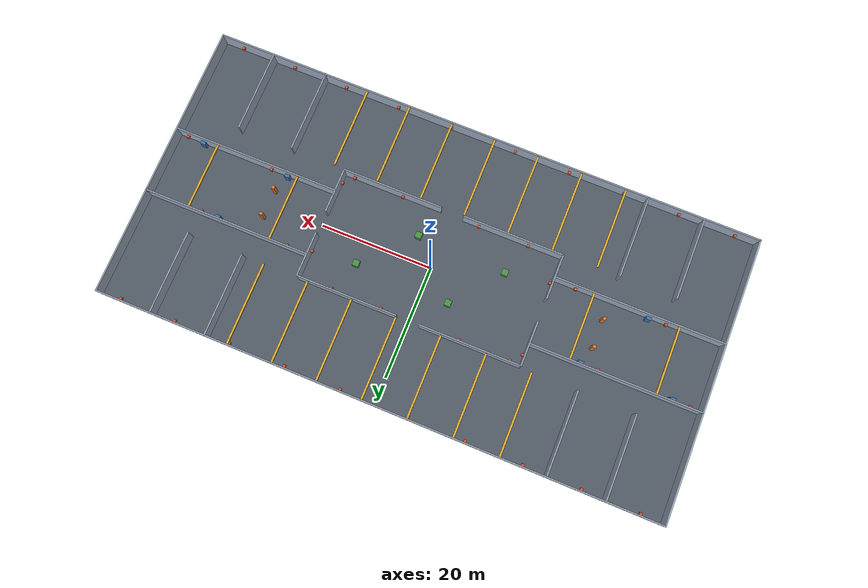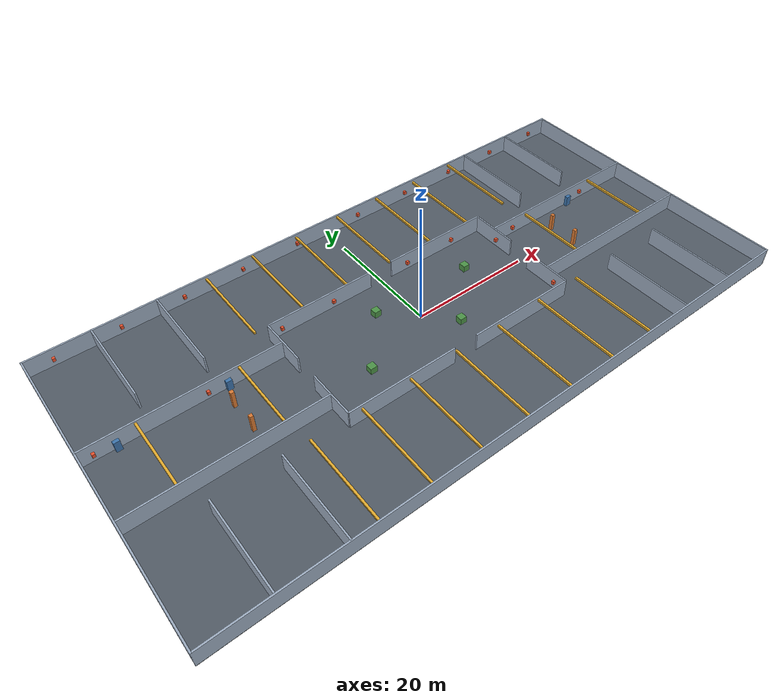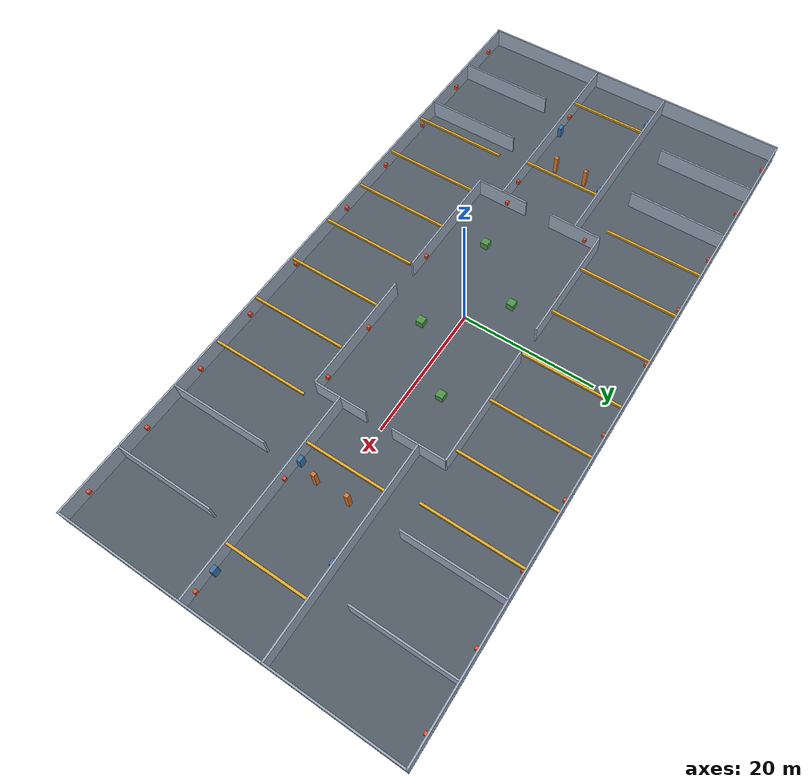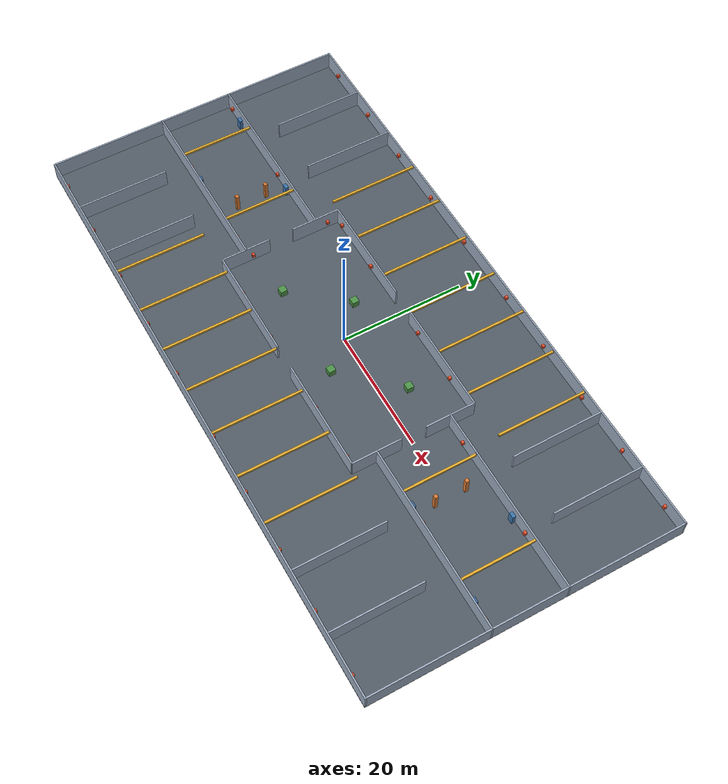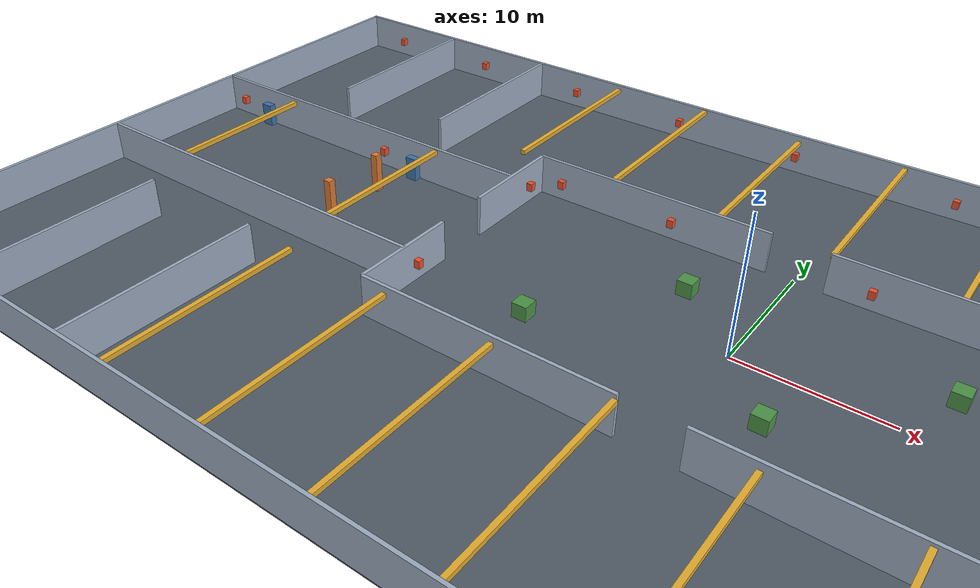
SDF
<sdf version='1.7'>
  <world name='default'>
    <light name='sun' type='directional'>
      <pose>0 0 60 0 0 0</pose>
      <diffuse>0.9 0.9 0.9 1</diffuse>
      <specular>0.2 0.2 0.2 1</specular>
      <direction>-0.3 0.2 -0.9</direction>
    </light>
    <gravity>0 0 -9.8</gravity>
    <physics type='ode'>
      <max_step_size>0.001</max_step_size>
      <real_time_factor>1</real_time_factor>
      <real_time_update_rate>1000</real_time_update_rate>
    </physics>
    <plugin filename='ignition-gazebo-physics-system' name='gz::sim::systems::Physics'/>
    <plugin filename='ignition-gazebo-sensors-system' name='gz::sim::systems::Sensors'>
      <render_engine>ogre2</render_engine>
    </plugin>
    <plugin filename='ignition-gazebo-imu-system' name='gz::sim::systems::Imu'/>
    <plugin filename='ignition-gazebo-forcetorque-system' name='gz::sim::systems::ForceTorque'/>
    <plugin filename='ignition-gazebo-user-commands-system' name='gz::sim::systems::UserCommands'/>
    <plugin filename='ignition-gazebo-scene-broadcaster-system' name='gz::sim::systems::SceneBroadcaster'/>
    <scene>
      <ambient>0.55 0.55 0.55 1</ambient>
      <background>0.78 0.82 0.88 1</background>
      <shadows>true</shadows>
    </scene>
    <model name='teaching_building_atrium'>
      <static>true</static>
      <link name='floor'>
        <pose>0.000 0.000 -0.050 0 0 0</pose>
        <collision name='collision'>
          <geometry><box><size>100.000 50.000 0.100</size></box></geometry>
        </collision>
        <visual name='visual'>
          <geometry><box><size>100.000 50.000 0.100</size></box></geometry>
          <material>
            <ambient>0.320 0.360 0.400 1.000</ambient>
            <diffuse>0.320 0.360 0.400 1.000</diffuse>
          </material>
        </visual>
      </link>
      <link name='outer_north'>
        <pose>0.000 24.875 1.500 0 0 0</pose>
        <collision name='collision'>
          <geometry><box><size>100.000 0.250 3.000</size></box></geometry>
        </collision>
        <visual name='visual'>
          <geometry><box><size>100.000 0.250 3.000</size></box></geometry>
          <material>
            <ambient>0.620 0.680 0.760 1.000</ambient>
            <diffuse>0.620 0.680 0.760 1.000</diffuse>
          </material>
        </visual>
      </link>
      <link name='outer_south'>
        <pose>0.000 -24.875 1.500 0 0 0</pose>
        <collision name='collision'>
          <geometry><box><size>100.000 0.250 3.000</size></box></geometry>
        </collision>
        <visual name='visual'>
          <geometry><box><size>100.000 0.250 3.000</size></box></geometry>
          <material>
            <ambient>0.620 0.680 0.760 1.000</ambient>
            <diffuse>0.620 0.680 0.760 1.000</diffuse>
          </material>
        </visual>
      </link>
      <link name='outer_east'>
        <pose>49.875 0.000 1.500 0 0 0</pose>
        <collision name='collision'>
          <geometry><box><size>0.250 50.000 3.000</size></box></geometry>
        </collision>
        <visual name='visual'>
          <geometry><box><size>0.250 50.000 3.000</size></box></geometry>
          <material>
            <ambient>0.620 0.680 0.760 1.000</ambient>
            <diffuse>0.620 0.680 0.760 1.000</diffuse>
          </material>
        </visual>
      </link>
      <link name='outer_west'>
        <pose>-49.875 0.000 1.500 0 0 0</pose>
        <collision name='collision'>
          <geometry><box><size>0.250 50.000 3.000</size></box></geometry>
        </collision>
        <visual name='visual'>
          <geometry><box><size>0.250 50.000 3.000</size></box></geometry>
          <material>
            <ambient>0.620 0.680 0.760 1.000</ambient>
            <diffuse>0.620 0.680 0.760 1.000</diffuse>
          </material>
        </visual>
      </link>
      <link name='atrium_north_left'>
        <pose>-11.000 10.000 1.500 0 0 0</pose>
        <collision name='collision'>
          <geometry><box><size>18.000 0.250 3.000</size></box></geometry>
        </collision>
        <visual name='visual'>
          <geometry><box><size>18.000 0.250 3.000</size></box></geometry>
          <material>
            <ambient>0.620 0.680 0.760 1.000</ambient>
            <diffuse>0.620 0.680 0.760 1.000</diffuse>
          </material>
        </visual>
      </link>
      <link name='atrium_north_right'>
        <pose>11.000 10.000 1.500 0 0 0</pose>
        <collision name='collision'>
          <geometry><box><size>18.000 0.250 3.000</size></box></geometry>
        </collision>
        <visual name='visual'>
          <geometry><box><size>18.000 0.250 3.000</size></box></geometry>
          <material>
            <ambient>0.620 0.680 0.760 1.000</ambient>
            <diffuse>0.620 0.680 0.760 1.000</diffuse>
          </material>
        </visual>
      </link>
      <link name='atrium_south_left'>
        <pose>-11.000 -10.000 1.500 0 0 0</pose>
        <collision name='collision'>
          <geometry><box><size>18.000 0.250 3.000</size></box></geometry>
        </collision>
        <visual name='visual'>
          <geometry><box><size>18.000 0.250 3.000</size></box></geometry>
          <material>
            <ambient>0.620 0.680 0.760 1.000</ambient>
            <diffuse>0.620 0.680 0.760 1.000</diffuse>
          </material>
        </visual>
      </link>
      <link name='atrium_south_right'>
        <pose>11.000 -10.000 1.500 0 0 0</pose>
        <collision name='collision'>
          <geometry><box><size>18.000 0.250 3.000</size></box></geometry>
        </collision>
        <visual name='visual'>
          <geometry><box><size>18.000 0.250 3.000</size></box></geometry>
          <material>
            <ambient>0.620 0.680 0.760 1.000</ambient>
            <diffuse>0.620 0.680 0.760 1.000</diffuse>
          </material>
        </visual>
      </link>
      <link name='atrium_west_lower'>
        <pose>-20.000 -6.000 1.500 0 0 0</pose>
        <collision name='collision'>
          <geometry><box><size>0.250 8.000 3.000</size></box></geometry>
        </collision>
        <visual name='visual'>
          <geometry><box><size>0.250 8.000 3.000</size></box></geometry>
          <material>
            <ambient>0.620 0.680 0.760 1.000</ambient>
            <diffuse>0.620 0.680 0.760 1.000</diffuse>
          </material>
        </visual>
      </link>
      <link name='atrium_west_upper'>
        <pose>-20.000 6.000 1.500 0 0 0</pose>
        <collision name='collision'>
          <geometry><box><size>0.250 8.000 3.000</size></box></geometry>
        </collision>
        <visual name='visual'>
          <geometry><box><size>0.250 8.000 3.000</size></box></geometry>
          <material>
            <ambient>0.620 0.680 0.760 1.000</ambient>
            <diffuse>0.620 0.680 0.760 1.000</diffuse>
          </material>
        </visual>
      </link>
      <link name='atrium_east_lower'>
        <pose>20.000 -6.000 1.500 0 0 0</pose>
        <collision name='collision'>
          <geometry><box><size>0.250 8.000 3.000</size></box></geometry>
        </collision>
        <visual name='visual'>
          <geometry><box><size>0.250 8.000 3.000</size></box></geometry>
          <material>
            <ambient>0.620 0.680 0.760 1.000</ambient>
            <diffuse>0.620 0.680 0.760 1.000</diffuse>
          </material>
        </visual>
      </link>
      <link name='atrium_east_upper'>
        <pose>20.000 6.000 1.500 0 0 0</pose>
        <collision name='collision'>
          <geometry><box><size>0.250 8.000 3.000</size></box></geometry>
        </collision>
        <visual name='visual'>
          <geometry><box><size>0.250 8.000 3.000</size></box></geometry>
          <material>
            <ambient>0.620 0.680 0.760 1.000</ambient>
            <diffuse>0.620 0.680 0.760 1.000</diffuse>
          </material>
        </visual>
      </link>
      <link name='north_wing_0'>
        <pose>-40.000 17.500 1.500 0 0 0</pose>
        <collision name='collision'>
          <geometry><box><size>0.250 14.750 3.000</size></box></geometry>
        </collision>
        <visual name='visual'>
          <geometry><box><size>0.250 14.750 3.000</size></box></geometry>
          <material>
            <ambient>0.620 0.680 0.760 1.000</ambient>
            <diffuse>0.620 0.680 0.760 1.000</diffuse>
          </material>
        </visual>
      </link>
      <link name='south_wing_0'>
        <pose>-40.000 -17.500 1.500 0 0 0</pose>
        <collision name='collision'>
          <geometry><box><size>0.250 14.750 3.000</size></box></geometry>
        </collision>
        <visual name='visual'>
          <geometry><box><size>0.250 14.750 3.000</size></box></geometry>
          <material>
            <ambient>0.620 0.680 0.760 1.000</ambient>
            <diffuse>0.620 0.680 0.760 1.000</diffuse>
          </material>
        </visual>
      </link>
      <link name='north_wing_1'>
        <pose>-30.000 17.500 1.500 0 0 0</pose>
        <collision name='collision'>
          <geometry><box><size>0.250 14.750 3.000</size></box></geometry>
        </collision>
        <visual name='visual'>
          <geometry><box><size>0.250 14.750 3.000</size></box></geometry>
          <material>
            <ambient>0.620 0.680 0.760 1.000</ambient>
            <diffuse>0.620 0.680 0.760 1.000</diffuse>
          </material>
        </visual>
      </link>
      <link name='south_wing_1'>
        <pose>-30.000 -17.500 1.500 0 0 0</pose>
        <collision name='collision'>
          <geometry><box><size>0.250 14.750 3.000</size></box></geometry>
        </collision>
        <visual name='visual'>
          <geometry><box><size>0.250 14.750 3.000</size></box></geometry>
          <material>
            <ambient>0.620 0.680 0.760 1.000</ambient>
            <diffuse>0.620 0.680 0.760 1.000</diffuse>
          </material>
        </visual>
      </link>
      <link name='north_wing_2'>
        <pose>30.000 17.500 1.500 0 0 0</pose>
        <collision name='collision'>
          <geometry><box><size>0.250 14.750 3.000</size></box></geometry>
        </collision>
        <visual name='visual'>
          <geometry><box><size>0.250 14.750 3.000</size></box></geometry>
          <material>
            <ambient>0.620 0.680 0.760 1.000</ambient>
            <diffuse>0.620 0.680 0.760 1.000</diffuse>
          </material>
        </visual>
      </link>
      <link name='south_wing_2'>
        <pose>30.000 -17.500 1.500 0 0 0</pose>
        <collision name='collision'>
          <geometry><box><size>0.250 14.750 3.000</size></box></geometry>
        </collision>
        <visual name='visual'>
          <geometry><box><size>0.250 14.750 3.000</size></box></geometry>
          <material>
            <ambient>0.620 0.680 0.760 1.000</ambient>
            <diffuse>0.620 0.680 0.760 1.000</diffuse>
          </material>
        </visual>
      </link>
      <link name='north_wing_3'>
        <pose>40.000 17.500 1.500 0 0 0</pose>
        <collision name='collision'>
          <geometry><box><size>0.250 14.750 3.000</size></box></geometry>
        </collision>
        <visual name='visual'>
          <geometry><box><size>0.250 14.750 3.000</size></box></geometry>
          <material>
            <ambient>0.620 0.680 0.760 1.000</ambient>
            <diffuse>0.620 0.680 0.760 1.000</diffuse>
          </material>
        </visual>
      </link>
      <link name='south_wing_3'>
        <pose>40.000 -17.500 1.500 0 0 0</pose>
        <collision name='collision'>
          <geometry><box><size>0.250 14.750 3.000</size></box></geometry>
        </collision>
        <visual name='visual'>
          <geometry><box><size>0.250 14.750 3.000</size></box></geometry>
          <material>
            <ambient>0.620 0.680 0.760 1.000</ambient>
            <diffuse>0.620 0.680 0.760 1.000</diffuse>
          </material>
        </visual>
      </link>
      <link name='west_mid_lower'>
        <pose>-35.000 -6.000 1.500 0 0 0</pose>
        <collision name='collision'>
          <geometry><box><size>30.000 0.250 3.000</size></box></geometry>
        </collision>
        <visual name='visual'>
          <geometry><box><size>30.000 0.250 3.000</size></box></geometry>
          <material>
            <ambient>0.620 0.680 0.760 1.000</ambient>
            <diffuse>0.620 0.680 0.760 1.000</diffuse>
          </material>
        </visual>
      </link>
      <link name='west_mid_upper'>
        <pose>-35.000 6.000 1.500 0 0 0</pose>
        <collision name='collision'>
          <geometry><box><size>30.000 0.250 3.000</size></box></geometry>
        </collision>
        <visual name='visual'>
          <geometry><box><size>30.000 0.250 3.000</size></box></geometry>
          <material>
            <ambient>0.620 0.680 0.760 1.000</ambient>
            <diffuse>0.620 0.680 0.760 1.000</diffuse>
          </material>
        </visual>
      </link>
      <link name='east_mid_lower'>
        <pose>35.000 -6.000 1.500 0 0 0</pose>
        <collision name='collision'>
          <geometry><box><size>30.000 0.250 3.000</size></box></geometry>
        </collision>
        <visual name='visual'>
          <geometry><box><size>30.000 0.250 3.000</size></box></geometry>
          <material>
            <ambient>0.620 0.680 0.760 1.000</ambient>
            <diffuse>0.620 0.680 0.760 1.000</diffuse>
          </material>
        </visual>
      </link>
      <link name='east_mid_upper'>
        <pose>35.000 6.000 1.500 0 0 0</pose>
        <collision name='collision'>
          <geometry><box><size>30.000 0.250 3.000</size></box></geometry>
        </collision>
        <visual name='visual'>
          <geometry><box><size>30.000 0.250 3.000</size></box></geometry>
          <material>
            <ambient>0.620 0.680 0.760 1.000</ambient>
            <diffuse>0.620 0.680 0.760 1.000</diffuse>
          </material>
        </visual>
      </link>
      <link name='loop_pillar_0'>
        <pose>-30.000 -2.500 1.500 0 0 0</pose>
        <collision name='collision'>
          <geometry><box><size>0.550 0.550 3.000</size></box></geometry>
        </collision>
        <visual name='visual'>
          <geometry><box><size>0.550 0.550 3.000</size></box></geometry>
          <material>
            <ambient>0.860 0.480 0.200 1.000</ambient>
            <diffuse>0.860 0.480 0.200 1.000</diffuse>
          </material>
        </visual>
      </link>
      <link name='loop_pillar_1'>
        <pose>-30.000 2.500 1.500 0 0 0</pose>
        <collision name='collision'>
          <geometry><box><size>0.550 0.550 3.000</size></box></geometry>
        </collision>
        <visual name='visual'>
          <geometry><box><size>0.550 0.550 3.000</size></box></geometry>
          <material>
            <ambient>0.860 0.480 0.200 1.000</ambient>
            <diffuse>0.860 0.480 0.200 1.000</diffuse>
          </material>
        </visual>
      </link>
      <link name='loop_pillar_2'>
        <pose>30.000 -2.500 1.500 0 0 0</pose>
        <collision name='collision'>
          <geometry><box><size>0.550 0.550 3.000</size></box></geometry>
        </collision>
        <visual name='visual'>
          <geometry><box><size>0.550 0.550 3.000</size></box></geometry>
          <material>
            <ambient>0.860 0.480 0.200 1.000</ambient>
            <diffuse>0.860 0.480 0.200 1.000</diffuse>
          </material>
        </visual>
      </link>
      <link name='loop_pillar_3'>
        <pose>30.000 2.500 1.500 0 0 0</pose>
        <collision name='collision'>
          <geometry><box><size>0.550 0.550 3.000</size></box></geometry>
        </collision>
        <visual name='visual'>
          <geometry><box><size>0.550 0.550 3.000</size></box></geometry>
          <material>
            <ambient>0.860 0.480 0.200 1.000</ambient>
            <diffuse>0.860 0.480 0.200 1.000</diffuse>
          </material>
        </visual>
      </link>
      <link name='atrium_link_cabinet_0'>
        <pose>-45.000 5.550 0.900 0 0 0</pose>
        <collision name='collision'>
          <geometry><box><size>0.900 0.550 1.800</size></box></geometry>
        </collision>
        <visual name='visual'>
          <geometry><box><size>0.900 0.550 1.800</size></box></geometry>
          <material>
            <ambient>0.240 0.460 0.680 1.000</ambient>
            <diffuse>0.240 0.460 0.680 1.000</diffuse>
          </material>
        </visual>
      </link>
      <link name='atrium_link_cabinet_1'>
        <pose>-37.000 -5.550 0.900 0 0 0</pose>
        <collision name='collision'>
          <geometry><box><size>0.900 0.550 1.800</size></box></geometry>
        </collision>
        <visual name='visual'>
          <geometry><box><size>0.900 0.550 1.800</size></box></geometry>
          <material>
            <ambient>0.240 0.460 0.680 1.000</ambient>
            <diffuse>0.240 0.460 0.680 1.000</diffuse>
          </material>
        </visual>
      </link>
      <link name='atrium_link_cabinet_2'>
        <pose>-29.000 5.550 0.900 0 0 0</pose>
        <collision name='collision'>
          <geometry><box><size>0.900 0.550 1.800</size></box></geometry>
        </collision>
        <visual name='visual'>
          <geometry><box><size>0.900 0.550 1.800</size></box></geometry>
          <material>
            <ambient>0.240 0.460 0.680 1.000</ambient>
            <diffuse>0.240 0.460 0.680 1.000</diffuse>
          </material>
        </visual>
      </link>
      <link name='atrium_link_cabinet_3'>
        <pose>29.000 -5.550 0.900 0 0 0</pose>
        <collision name='collision'>
          <geometry><box><size>0.900 0.550 1.800</size></box></geometry>
        </collision>
        <visual name='visual'>
          <geometry><box><size>0.900 0.550 1.800</size></box></geometry>
          <material>
            <ambient>0.240 0.460 0.680 1.000</ambient>
            <diffuse>0.240 0.460 0.680 1.000</diffuse>
          </material>
        </visual>
      </link>
      <link name='atrium_link_cabinet_4'>
        <pose>37.000 5.550 0.900 0 0 0</pose>
        <collision name='collision'>
          <geometry><box><size>0.900 0.550 1.800</size></box></geometry>
        </collision>
        <visual name='visual'>
          <geometry><box><size>0.900 0.550 1.800</size></box></geometry>
          <material>
            <ambient>0.240 0.460 0.680 1.000</ambient>
            <diffuse>0.240 0.460 0.680 1.000</diffuse>
          </material>
        </visual>
      </link>
      <link name='atrium_link_cabinet_5'>
        <pose>45.000 -5.550 0.900 0 0 0</pose>
        <collision name='collision'>
          <geometry><box><size>0.900 0.550 1.800</size></box></geometry>
        </collision>
        <visual name='visual'>
          <geometry><box><size>0.900 0.550 1.800</size></box></geometry>
          <material>
            <ambient>0.240 0.460 0.680 1.000</ambient>
            <diffuse>0.240 0.460 0.680 1.000</diffuse>
          </material>
        </visual>
      </link>
      <link name='atrium_planter_0'>
        <pose>-12.000 -4.000 0.550 0 0 0</pose>
        <collision name='collision'>
          <geometry><box><size>1.100 1.100 1.100</size></box></geometry>
        </collision>
        <visual name='visual'>
          <geometry><box><size>1.100 1.100 1.100</size></box></geometry>
          <material>
            <ambient>0.300 0.580 0.280 1.000</ambient>
            <diffuse>0.300 0.580 0.280 1.000</diffuse>
          </material>
        </visual>
      </link>
      <link name='atrium_planter_1'>
        <pose>-5.000 4.500 0.550 0 0 0</pose>
        <collision name='collision'>
          <geometry><box><size>1.100 1.100 1.100</size></box></geometry>
        </collision>
        <visual name='visual'>
          <geometry><box><size>1.100 1.100 1.100</size></box></geometry>
          <material>
            <ambient>0.300 0.580 0.280 1.000</ambient>
            <diffuse>0.300 0.580 0.280 1.000</diffuse>
          </material>
        </visual>
      </link>
      <link name='atrium_planter_2'>
        <pose>4.000 -4.500 0.550 0 0 0</pose>
        <collision name='collision'>
          <geometry><box><size>1.100 1.100 1.100</size></box></geometry>
        </collision>
        <visual name='visual'>
          <geometry><box><size>1.100 1.100 1.100</size></box></geometry>
          <material>
            <ambient>0.300 0.580 0.280 1.000</ambient>
            <diffuse>0.300 0.580 0.280 1.000</diffuse>
          </material>
        </visual>
      </link>
      <link name='atrium_planter_3'>
        <pose>12.000 4.000 0.550 0 0 0</pose>
        <collision name='collision'>
          <geometry><box><size>1.100 1.100 1.100</size></box></geometry>
        </collision>
        <visual name='visual'>
          <geometry><box><size>1.100 1.100 1.100</size></box></geometry>
          <material>
            <ambient>0.300 0.580 0.280 1.000</ambient>
            <diffuse>0.300 0.580 0.280 1.000</diffuse>
          </material>
        </visual>
      </link>
      <link name='atrium_lidar_feature_0'>
        <pose>-46.000 24.525 1.350 0 0 0</pose>
        <collision name='collision'>
          <geometry><box><size>0.450 0.450 0.600</size></box></geometry>
        </collision>
        <visual name='visual'>
          <geometry><box><size>0.450 0.450 0.600</size></box></geometry>
          <material>
            <ambient>0.920 0.320 0.180 1.000</ambient>
            <diffuse>0.920 0.320 0.180 1.000</diffuse>
          </material>
        </visual>
      </link>
      <link name='atrium_lidar_feature_1'>
        <pose>-46.000 -24.525 1.350 0 0 0</pose>
        <collision name='collision'>
          <geometry><box><size>0.450 0.450 0.600</size></box></geometry>
        </collision>
        <visual name='visual'>
          <geometry><box><size>0.450 0.450 0.600</size></box></geometry>
          <material>
            <ambient>0.920 0.320 0.180 1.000</ambient>
            <diffuse>0.920 0.320 0.180 1.000</diffuse>
          </material>
        </visual>
      </link>
      <link name='atrium_lidar_feature_2'>
        <pose>-36.000 24.525 1.350 0 0 0</pose>
        <collision name='collision'>
          <geometry><box><size>0.450 0.450 0.600</size></box></geometry>
        </collision>
        <visual name='visual'>
          <geometry><box><size>0.450 0.450 0.600</size></box></geometry>
          <material>
            <ambient>0.920 0.320 0.180 1.000</ambient>
            <diffuse>0.920 0.320 0.180 1.000</diffuse>
          </material>
        </visual>
      </link>
      <link name='atrium_lidar_feature_3'>
        <pose>-36.000 -24.525 1.350 0 0 0</pose>
        <collision name='collision'>
          <geometry><box><size>0.450 0.450 0.600</size></box></geometry>
        </collision>
        <visual name='visual'>
          <geometry><box><size>0.450 0.450 0.600</size></box></geometry>
          <material>
            <ambient>0.920 0.320 0.180 1.000</ambient>
            <diffuse>0.920 0.320 0.180 1.000</diffuse>
          </material>
        </visual>
      </link>
      <link name='atrium_lidar_feature_4'>
        <pose>-26.000 24.525 1.350 0 0 0</pose>
        <collision name='collision'>
          <geometry><box><size>0.450 0.450 0.600</size></box></geometry>
        </collision>
        <visual name='visual'>
          <geometry><box><size>0.450 0.450 0.600</size></box></geometry>
          <material>
            <ambient>0.920 0.320 0.180 1.000</ambient>
            <diffuse>0.920 0.320 0.180 1.000</diffuse>
          </material>
        </visual>
      </link>
      <link name='atrium_lidar_feature_5'>
        <pose>-26.000 -24.525 1.350 0 0 0</pose>
        <collision name='collision'>
          <geometry><box><size>0.450 0.450 0.600</size></box></geometry>
        </collision>
        <visual name='visual'>
          <geometry><box><size>0.450 0.450 0.600</size></box></geometry>
          <material>
            <ambient>0.920 0.320 0.180 1.000</ambient>
            <diffuse>0.920 0.320 0.180 1.000</diffuse>
          </material>
        </visual>
      </link>
      <link name='atrium_lidar_feature_6'>
        <pose>-16.000 24.525 1.350 0 0 0</pose>
        <collision name='collision'>
          <geometry><box><size>0.450 0.450 0.600</size></box></geometry>
        </collision>
        <visual name='visual'>
          <geometry><box><size>0.450 0.450 0.600</size></box></geometry>
          <material>
            <ambient>0.920 0.320 0.180 1.000</ambient>
            <diffuse>0.920 0.320 0.180 1.000</diffuse>
          </material>
        </visual>
      </link>
      <link name='atrium_lidar_feature_7'>
        <pose>-16.000 -24.525 1.350 0 0 0</pose>
        <collision name='collision'>
          <geometry><box><size>0.450 0.450 0.600</size></box></geometry>
        </collision>
        <visual name='visual'>
          <geometry><box><size>0.450 0.450 0.600</size></box></geometry>
          <material>
            <ambient>0.920 0.320 0.180 1.000</ambient>
            <diffuse>0.920 0.320 0.180 1.000</diffuse>
          </material>
        </visual>
      </link>
      <link name='atrium_lidar_feature_8'>
        <pose>-6.000 24.525 1.350 0 0 0</pose>
        <collision name='collision'>
          <geometry><box><size>0.450 0.450 0.600</size></box></geometry>
        </collision>
        <visual name='visual'>
          <geometry><box><size>0.450 0.450 0.600</size></box></geometry>
          <material>
            <ambient>0.920 0.320 0.180 1.000</ambient>
            <diffuse>0.920 0.320 0.180 1.000</diffuse>
          </material>
        </visual>
      </link>
      <link name='atrium_lidar_feature_9'>
        <pose>-6.000 -24.525 1.350 0 0 0</pose>
        <collision name='collision'>
          <geometry><box><size>0.450 0.450 0.600</size></box></geometry>
        </collision>
        <visual name='visual'>
          <geometry><box><size>0.450 0.450 0.600</size></box></geometry>
          <material>
            <ambient>0.920 0.320 0.180 1.000</ambient>
            <diffuse>0.920 0.320 0.180 1.000</diffuse>
          </material>
        </visual>
      </link>
      <link name='atrium_lidar_feature_10'>
        <pose>6.000 24.525 1.350 0 0 0</pose>
        <collision name='collision'>
          <geometry><box><size>0.450 0.450 0.600</size></box></geometry>
        </collision>
        <visual name='visual'>
          <geometry><box><size>0.450 0.450 0.600</size></box></geometry>
          <material>
            <ambient>0.920 0.320 0.180 1.000</ambient>
            <diffuse>0.920 0.320 0.180 1.000</diffuse>
          </material>
        </visual>
      </link>
      <link name='atrium_lidar_feature_11'>
        <pose>6.000 -24.525 1.350 0 0 0</pose>
        <collision name='collision'>
          <geometry><box><size>0.450 0.450 0.600</size></box></geometry>
        </collision>
        <visual name='visual'>
          <geometry><box><size>0.450 0.450 0.600</size></box></geometry>
          <material>
            <ambient>0.920 0.320 0.180 1.000</ambient>
            <diffuse>0.920 0.320 0.180 1.000</diffuse>
          </material>
        </visual>
      </link>
      <link name='atrium_lidar_feature_12'>
        <pose>16.000 24.525 1.350 0 0 0</pose>
        <collision name='collision'>
          <geometry><box><size>0.450 0.450 0.600</size></box></geometry>
        </collision>
        <visual name='visual'>
          <geometry><box><size>0.450 0.450 0.600</size></box></geometry>
          <material>
            <ambient>0.920 0.320 0.180 1.000</ambient>
            <diffuse>0.920 0.320 0.180 1.000</diffuse>
          </material>
        </visual>
      </link>
      <link name='atrium_lidar_feature_13'>
        <pose>16.000 -24.525 1.350 0 0 0</pose>
        <collision name='collision'>
          <geometry><box><size>0.450 0.450 0.600</size></box></geometry>
        </collision>
        <visual name='visual'>
          <geometry><box><size>0.450 0.450 0.600</size></box></geometry>
          <material>
            <ambient>0.920 0.320 0.180 1.000</ambient>
            <diffuse>0.920 0.320 0.180 1.000</diffuse>
          </material>
        </visual>
      </link>
      <link name='atrium_lidar_feature_14'>
        <pose>26.000 24.525 1.350 0 0 0</pose>
        <collision name='collision'>
          <geometry><box><size>0.450 0.450 0.600</size></box></geometry>
        </collision>
        <visual name='visual'>
          <geometry><box><size>0.450 0.450 0.600</size></box></geometry>
          <material>
            <ambient>0.920 0.320 0.180 1.000</ambient>
            <diffuse>0.920 0.320 0.180 1.000</diffuse>
          </material>
        </visual>
      </link>
      <link name='atrium_lidar_feature_15'>
        <pose>26.000 -24.525 1.350 0 0 0</pose>
        <collision name='collision'>
          <geometry><box><size>0.450 0.450 0.600</size></box></geometry>
        </collision>
        <visual name='visual'>
          <geometry><box><size>0.450 0.450 0.600</size></box></geometry>
          <material>
            <ambient>0.920 0.320 0.180 1.000</ambient>
            <diffuse>0.920 0.320 0.180 1.000</diffuse>
          </material>
        </visual>
      </link>
      <link name='atrium_lidar_feature_16'>
        <pose>36.000 24.525 1.350 0 0 0</pose>
        <collision name='collision'>
          <geometry><box><size>0.450 0.450 0.600</size></box></geometry>
        </collision>
        <visual name='visual'>
          <geometry><box><size>0.450 0.450 0.600</size></box></geometry>
          <material>
            <ambient>0.920 0.320 0.180 1.000</ambient>
            <diffuse>0.920 0.320 0.180 1.000</diffuse>
          </material>
        </visual>
      </link>
      <link name='atrium_lidar_feature_17'>
        <pose>36.000 -24.525 1.350 0 0 0</pose>
        <collision name='collision'>
          <geometry><box><size>0.450 0.450 0.600</size></box></geometry>
        </collision>
        <visual name='visual'>
          <geometry><box><size>0.450 0.450 0.600</size></box></geometry>
          <material>
            <ambient>0.920 0.320 0.180 1.000</ambient>
            <diffuse>0.920 0.320 0.180 1.000</diffuse>
          </material>
        </visual>
      </link>
      <link name='atrium_lidar_feature_18'>
        <pose>46.000 24.525 1.350 0 0 0</pose>
        <collision name='collision'>
          <geometry><box><size>0.450 0.450 0.600</size></box></geometry>
        </collision>
        <visual name='visual'>
          <geometry><box><size>0.450 0.450 0.600</size></box></geometry>
          <material>
            <ambient>0.920 0.320 0.180 1.000</ambient>
            <diffuse>0.920 0.320 0.180 1.000</diffuse>
          </material>
        </visual>
      </link>
      <link name='atrium_lidar_feature_19'>
        <pose>46.000 -24.525 1.350 0 0 0</pose>
        <collision name='collision'>
          <geometry><box><size>0.450 0.450 0.600</size></box></geometry>
        </collision>
        <visual name='visual'>
          <geometry><box><size>0.450 0.450 0.600</size></box></geometry>
          <material>
            <ambient>0.920 0.320 0.180 1.000</ambient>
            <diffuse>0.920 0.320 0.180 1.000</diffuse>
          </material>
        </visual>
      </link>
      <link name='atrium_lidar_feature_20'>
        <pose>-48.000 5.650 1.350 0 0 0</pose>
        <collision name='collision'>
          <geometry><box><size>0.450 0.450 0.600</size></box></geometry>
        </collision>
        <visual name='visual'>
          <geometry><box><size>0.450 0.450 0.600</size></box></geometry>
          <material>
            <ambient>0.920 0.320 0.180 1.000</ambient>
            <diffuse>0.920 0.320 0.180 1.000</diffuse>
          </material>
        </visual>
      </link>
      <link name='atrium_lidar_feature_21'>
        <pose>-40.000 -5.650 1.350 0 0 0</pose>
        <collision name='collision'>
          <geometry><box><size>0.450 0.450 0.600</size></box></geometry>
        </collision>
        <visual name='visual'>
          <geometry><box><size>0.450 0.450 0.600</size></box></geometry>
          <material>
            <ambient>0.920 0.320 0.180 1.000</ambient>
            <diffuse>0.920 0.320 0.180 1.000</diffuse>
          </material>
        </visual>
      </link>
      <link name='atrium_lidar_feature_22'>
        <pose>-32.000 5.650 1.350 0 0 0</pose>
        <collision name='collision'>
          <geometry><box><size>0.450 0.450 0.600</size></box></geometry>
        </collision>
        <visual name='visual'>
          <geometry><box><size>0.450 0.450 0.600</size></box></geometry>
          <material>
            <ambient>0.920 0.320 0.180 1.000</ambient>
            <diffuse>0.920 0.320 0.180 1.000</diffuse>
          </material>
        </visual>
      </link>
      <link name='atrium_lidar_feature_23'>
        <pose>-24.000 -5.650 1.350 0 0 0</pose>
        <collision name='collision'>
          <geometry><box><size>0.450 0.450 0.600</size></box></geometry>
        </collision>
        <visual name='visual'>
          <geometry><box><size>0.450 0.450 0.600</size></box></geometry>
          <material>
            <ambient>0.920 0.320 0.180 1.000</ambient>
            <diffuse>0.920 0.320 0.180 1.000</diffuse>
          </material>
        </visual>
      </link>
      <link name='atrium_lidar_feature_24'>
        <pose>24.000 5.650 1.350 0 0 0</pose>
        <collision name='collision'>
          <geometry><box><size>0.450 0.450 0.600</size></box></geometry>
        </collision>
        <visual name='visual'>
          <geometry><box><size>0.450 0.450 0.600</size></box></geometry>
          <material>
            <ambient>0.920 0.320 0.180 1.000</ambient>
            <diffuse>0.920 0.320 0.180 1.000</diffuse>
          </material>
        </visual>
      </link>
      <link name='atrium_lidar_feature_25'>
        <pose>32.000 -5.650 1.350 0 0 0</pose>
        <collision name='collision'>
          <geometry><box><size>0.450 0.450 0.600</size></box></geometry>
        </collision>
        <visual name='visual'>
          <geometry><box><size>0.450 0.450 0.600</size></box></geometry>
          <material>
            <ambient>0.920 0.320 0.180 1.000</ambient>
            <diffuse>0.920 0.320 0.180 1.000</diffuse>
          </material>
        </visual>
      </link>
      <link name='atrium_lidar_feature_26'>
        <pose>40.000 5.650 1.350 0 0 0</pose>
        <collision name='collision'>
          <geometry><box><size>0.450 0.450 0.600</size></box></geometry>
        </collision>
        <visual name='visual'>
          <geometry><box><size>0.450 0.450 0.600</size></box></geometry>
          <material>
            <ambient>0.920 0.320 0.180 1.000</ambient>
            <diffuse>0.920 0.320 0.180 1.000</diffuse>
          </material>
        </visual>
      </link>
      <link name='atrium_lidar_feature_27'>
        <pose>48.000 -5.650 1.350 0 0 0</pose>
        <collision name='collision'>
          <geometry><box><size>0.450 0.450 0.600</size></box></geometry>
        </collision>
        <visual name='visual'>
          <geometry><box><size>0.450 0.450 0.600</size></box></geometry>
          <material>
            <ambient>0.920 0.320 0.180 1.000</ambient>
            <diffuse>0.920 0.320 0.180 1.000</diffuse>
          </material>
        </visual>
      </link>
      <link name='atrium_lidar_feature_28'>
        <pose>-18.000 9.650 1.350 0 0 0</pose>
        <collision name='collision'>
          <geometry><box><size>0.450 0.450 0.600</size></box></geometry>
        </collision>
        <visual name='visual'>
          <geometry><box><size>0.450 0.450 0.600</size></box></geometry>
          <material>
            <ambient>0.920 0.320 0.180 1.000</ambient>
            <diffuse>0.920 0.320 0.180 1.000</diffuse>
          </material>
        </visual>
      </link>
      <link name='atrium_lidar_feature_29'>
        <pose>-14.000 -9.650 1.350 0 0 0</pose>
        <collision name='collision'>
          <geometry><box><size>0.450 0.450 0.600</size></box></geometry>
        </collision>
        <visual name='visual'>
          <geometry><box><size>0.450 0.450 0.600</size></box></geometry>
          <material>
            <ambient>0.920 0.320 0.180 1.000</ambient>
            <diffuse>0.920 0.320 0.180 1.000</diffuse>
          </material>
        </visual>
      </link>
      <link name='atrium_lidar_feature_30'>
        <pose>-9.000 9.650 1.350 0 0 0</pose>
        <collision name='collision'>
          <geometry><box><size>0.450 0.450 0.600</size></box></geometry>
        </collision>
        <visual name='visual'>
          <geometry><box><size>0.450 0.450 0.600</size></box></geometry>
          <material>
            <ambient>0.920 0.320 0.180 1.000</ambient>
            <diffuse>0.920 0.320 0.180 1.000</diffuse>
          </material>
        </visual>
      </link>
      <link name='atrium_lidar_feature_31'>
        <pose>-5.000 -9.650 1.350 0 0 0</pose>
        <collision name='collision'>
          <geometry><box><size>0.450 0.450 0.600</size></box></geometry>
        </collision>
        <visual name='visual'>
          <geometry><box><size>0.450 0.450 0.600</size></box></geometry>
          <material>
            <ambient>0.920 0.320 0.180 1.000</ambient>
            <diffuse>0.920 0.320 0.180 1.000</diffuse>
          </material>
        </visual>
      </link>
      <link name='atrium_lidar_feature_32'>
        <pose>5.000 9.650 1.350 0 0 0</pose>
        <collision name='collision'>
          <geometry><box><size>0.450 0.450 0.600</size></box></geometry>
        </collision>
        <visual name='visual'>
          <geometry><box><size>0.450 0.450 0.600</size></box></geometry>
          <material>
            <ambient>0.920 0.320 0.180 1.000</ambient>
            <diffuse>0.920 0.320 0.180 1.000</diffuse>
          </material>
        </visual>
      </link>
      <link name='atrium_lidar_feature_33'>
        <pose>9.000 -9.650 1.350 0 0 0</pose>
        <collision name='collision'>
          <geometry><box><size>0.450 0.450 0.600</size></box></geometry>
        </collision>
        <visual name='visual'>
          <geometry><box><size>0.450 0.450 0.600</size></box></geometry>
          <material>
            <ambient>0.920 0.320 0.180 1.000</ambient>
            <diffuse>0.920 0.320 0.180 1.000</diffuse>
          </material>
        </visual>
      </link>
      <link name='atrium_lidar_feature_34'>
        <pose>14.000 9.650 1.350 0 0 0</pose>
        <collision name='collision'>
          <geometry><box><size>0.450 0.450 0.600</size></box></geometry>
        </collision>
        <visual name='visual'>
          <geometry><box><size>0.450 0.450 0.600</size></box></geometry>
          <material>
            <ambient>0.920 0.320 0.180 1.000</ambient>
            <diffuse>0.920 0.320 0.180 1.000</diffuse>
          </material>
        </visual>
      </link>
      <link name='atrium_lidar_feature_35'>
        <pose>18.000 -9.650 1.350 0 0 0</pose>
        <collision name='collision'>
          <geometry><box><size>0.450 0.450 0.600</size></box></geometry>
        </collision>
        <visual name='visual'>
          <geometry><box><size>0.450 0.450 0.600</size></box></geometry>
          <material>
            <ambient>0.920 0.320 0.180 1.000</ambient>
            <diffuse>0.920 0.320 0.180 1.000</diffuse>
          </material>
        </visual>
      </link>
      <link name='atrium_lidar_feature_36'>
        <pose>19.650 -8.000 1.350 0 0 0</pose>
        <collision name='collision'>
          <geometry><box><size>0.450 0.450 0.600</size></box></geometry>
        </collision>
        <visual name='visual'>
          <geometry><box><size>0.450 0.450 0.600</size></box></geometry>
          <material>
            <ambient>0.920 0.320 0.180 1.000</ambient>
            <diffuse>0.920 0.320 0.180 1.000</diffuse>
          </material>
        </visual>
      </link>
      <link name='atrium_lidar_feature_37'>
        <pose>-19.650 -5.000 1.350 0 0 0</pose>
        <collision name='collision'>
          <geometry><box><size>0.450 0.450 0.600</size></box></geometry>
        </collision>
        <visual name='visual'>
          <geometry><box><size>0.450 0.450 0.600</size></box></geometry>
          <material>
            <ambient>0.920 0.320 0.180 1.000</ambient>
            <diffuse>0.920 0.320 0.180 1.000</diffuse>
          </material>
        </visual>
      </link>
      <link name='atrium_lidar_feature_38'>
        <pose>19.650 5.000 1.350 0 0 0</pose>
        <collision name='collision'>
          <geometry><box><size>0.450 0.450 0.600</size></box></geometry>
        </collision>
        <visual name='visual'>
          <geometry><box><size>0.450 0.450 0.600</size></box></geometry>
          <material>
            <ambient>0.920 0.320 0.180 1.000</ambient>
            <diffuse>0.920 0.320 0.180 1.000</diffuse>
          </material>
        </visual>
      </link>
      <link name='atrium_lidar_feature_39'>
        <pose>-19.650 8.000 1.350 0 0 0</pose>
        <collision name='collision'>
          <geometry><box><size>0.450 0.450 0.600</size></box></geometry>
        </collision>
        <visual name='visual'>
          <geometry><box><size>0.450 0.450 0.600</size></box></geometry>
          <material>
            <ambient>0.920 0.320 0.180 1.000</ambient>
            <diffuse>0.920 0.320 0.180 1.000</diffuse>
          </material>
        </visual>
      </link>
      <link name='atrium_overhead_landmark_0'>
        <pose>-42.000 0.000 2.580 0 0 0</pose>
        <collision name='collision'>
          <geometry><box><size>0.340 11.750 0.340</size></box></geometry>
        </collision>
        <visual name='visual'>
          <geometry><box><size>0.340 11.750 0.340</size></box></geometry>
          <material>
            <ambient>0.900 0.680 0.180 1.000</ambient>
            <diffuse>0.900 0.680 0.180 1.000</diffuse>
          </material>
        </visual>
      </link>
      <link name='atrium_overhead_landmark_1'>
        <pose>-27.000 0.000 2.720 0 0 0</pose>
        <collision name='collision'>
          <geometry><box><size>0.340 11.750 0.340</size></box></geometry>
        </collision>
        <visual name='visual'>
          <geometry><box><size>0.340 11.750 0.340</size></box></geometry>
          <material>
            <ambient>0.900 0.680 0.180 1.000</ambient>
            <diffuse>0.900 0.680 0.180 1.000</diffuse>
          </material>
        </visual>
      </link>
      <link name='atrium_overhead_landmark_2'>
        <pose>27.000 0.000 2.500 0 0 0</pose>
        <collision name='collision'>
          <geometry><box><size>0.340 11.750 0.340</size></box></geometry>
        </collision>
        <visual name='visual'>
          <geometry><box><size>0.340 11.750 0.340</size></box></geometry>
          <material>
            <ambient>0.900 0.680 0.180 1.000</ambient>
            <diffuse>0.900 0.680 0.180 1.000</diffuse>
          </material>
        </visual>
      </link>
      <link name='atrium_overhead_landmark_3'>
        <pose>42.000 0.000 2.660 0 0 0</pose>
        <collision name='collision'>
          <geometry><box><size>0.340 11.750 0.340</size></box></geometry>
        </collision>
        <visual name='visual'>
          <geometry><box><size>0.340 11.750 0.340</size></box></geometry>
          <material>
            <ambient>0.900 0.680 0.180 1.000</ambient>
            <diffuse>0.900 0.680 0.180 1.000</diffuse>
          </material>
        </visual>
      </link>
      <link name='atrium_overhead_landmark_4'>
        <pose>-10.000 -17.500 2.540 0 0 0</pose>
        <collision name='collision'>
          <geometry><box><size>0.340 14.500 0.340</size></box></geometry>
        </collision>
        <visual name='visual'>
          <geometry><box><size>0.340 14.500 0.340</size></box></geometry>
          <material>
            <ambient>0.900 0.680 0.180 1.000</ambient>
            <diffuse>0.900 0.680 0.180 1.000</diffuse>
          </material>
        </visual>
      </link>
      <link name='atrium_overhead_landmark_5'>
        <pose>10.000 17.500 2.700 0 0 0</pose>
        <collision name='collision'>
          <geometry><box><size>0.340 14.500 0.340</size></box></geometry>
        </collision>
        <visual name='visual'>
          <geometry><box><size>0.340 14.500 0.340</size></box></geometry>
          <material>
            <ambient>0.900 0.680 0.180 1.000</ambient>
            <diffuse>0.900 0.680 0.180 1.000</diffuse>
          </material>
        </visual>
      </link>
      <link name='atrium_overhead_landmark_6'>
        <pose>-26.000 -17.500 2.620 0 0 0</pose>
        <collision name='collision'>
          <geometry><box><size>0.340 14.500 0.340</size></box></geometry>
        </collision>
        <visual name='visual'>
          <geometry><box><size>0.340 14.500 0.340</size></box></geometry>
          <material>
            <ambient>0.900 0.680 0.180 1.000</ambient>
            <diffuse>0.900 0.680 0.180 1.000</diffuse>
          </material>
        </visual>
      </link>
      <link name='atrium_overhead_landmark_7'>
        <pose>-18.000 -17.500 2.480 0 0 0</pose>
        <collision name='collision'>
          <geometry><box><size>0.340 14.500 0.340</size></box></geometry>
        </collision>
        <visual name='visual'>
          <geometry><box><size>0.340 14.500 0.340</size></box></geometry>
          <material>
            <ambient>0.900 0.680 0.180 1.000</ambient>
            <diffuse>0.900 0.680 0.180 1.000</diffuse>
          </material>
        </visual>
      </link>
      <link name='atrium_overhead_landmark_8'>
        <pose>-2.000 -17.500 2.660 0 0 0</pose>
        <collision name='collision'>
          <geometry><box><size>0.340 14.500 0.340</size></box></geometry>
        </collision>
        <visual name='visual'>
          <geometry><box><size>0.340 14.500 0.340</size></box></geometry>
          <material>
            <ambient>0.900 0.680 0.180 1.000</ambient>
            <diffuse>0.900 0.680 0.180 1.000</diffuse>
          </material>
        </visual>
      </link>
      <link name='atrium_overhead_landmark_9'>
        <pose>6.000 -17.500 2.440 0 0 0</pose>
        <collision name='collision'>
          <geometry><box><size>0.340 14.500 0.340</size></box></geometry>
        </collision>
        <visual name='visual'>
          <geometry><box><size>0.340 14.500 0.340</size></box></geometry>
          <material>
            <ambient>0.900 0.680 0.180 1.000</ambient>
            <diffuse>0.900 0.680 0.180 1.000</diffuse>
          </material>
        </visual>
      </link>
      <link name='atrium_overhead_landmark_10'>
        <pose>14.000 -17.500 2.740 0 0 0</pose>
        <collision name='collision'>
          <geometry><box><size>0.340 14.500 0.340</size></box></geometry>
        </collision>
        <visual name='visual'>
          <geometry><box><size>0.340 14.500 0.340</size></box></geometry>
          <material>
            <ambient>0.900 0.680 0.180 1.000</ambient>
            <diffuse>0.900 0.680 0.180 1.000</diffuse>
          </material>
        </visual>
      </link>
      <link name='atrium_overhead_landmark_11'>
        <pose>22.000 -17.500 2.560 0 0 0</pose>
        <collision name='collision'>
          <geometry><box><size>0.340 14.500 0.340</size></box></geometry>
        </collision>
        <visual name='visual'>
          <geometry><box><size>0.340 14.500 0.340</size></box></geometry>
          <material>
            <ambient>0.900 0.680 0.180 1.000</ambient>
            <diffuse>0.900 0.680 0.180 1.000</diffuse>
          </material>
        </visual>
      </link>
      <link name='atrium_overhead_landmark_12'>
        <pose>26.000 17.500 2.600 0 0 0</pose>
        <collision name='collision'>
          <geometry><box><size>0.340 14.500 0.340</size></box></geometry>
        </collision>
        <visual name='visual'>
          <geometry><box><size>0.340 14.500 0.340</size></box></geometry>
          <material>
            <ambient>0.900 0.680 0.180 1.000</ambient>
            <diffuse>0.900 0.680 0.180 1.000</diffuse>
          </material>
        </visual>
      </link>
      <link name='atrium_overhead_landmark_13'>
        <pose>18.000 17.500 2.460 0 0 0</pose>
        <collision name='collision'>
          <geometry><box><size>0.340 14.500 0.340</size></box></geometry>
        </collision>
        <visual name='visual'>
          <geometry><box><size>0.340 14.500 0.340</size></box></geometry>
          <material>
            <ambient>0.900 0.680 0.180 1.000</ambient>
            <diffuse>0.900 0.680 0.180 1.000</diffuse>
          </material>
        </visual>
      </link>
      <link name='atrium_overhead_landmark_14'>
        <pose>2.000 17.500 2.680 0 0 0</pose>
        <collision name='collision'>
          <geometry><box><size>0.340 14.500 0.340</size></box></geometry>
        </collision>
        <visual name='visual'>
          <geometry><box><size>0.340 14.500 0.340</size></box></geometry>
          <material>
            <ambient>0.900 0.680 0.180 1.000</ambient>
            <diffuse>0.900 0.680 0.180 1.000</diffuse>
          </material>
        </visual>
      </link>
      <link name='atrium_overhead_landmark_15'>
        <pose>-6.000 17.500 2.420 0 0 0</pose>
        <collision name='collision'>
          <geometry><box><size>0.340 14.500 0.340</size></box></geometry>
        </collision>
        <visual name='visual'>
          <geometry><box><size>0.340 14.500 0.340</size></box></geometry>
          <material>
            <ambient>0.900 0.680 0.180 1.000</ambient>
            <diffuse>0.900 0.680 0.180 1.000</diffuse>
          </material>
        </visual>
      </link>
      <link name='atrium_overhead_landmark_16'>
        <pose>-14.000 17.500 2.760 0 0 0</pose>
        <collision name='collision'>
          <geometry><box><size>0.340 14.500 0.340</size></box></geometry>
        </collision>
        <visual name='visual'>
          <geometry><box><size>0.340 14.500 0.340</size></box></geometry>
          <material>
            <ambient>0.900 0.680 0.180 1.000</ambient>
            <diffuse>0.900 0.680 0.180 1.000</diffuse>
          </material>
        </visual>
      </link>
      <link name='atrium_overhead_landmark_17'>
        <pose>-22.000 17.500 2.520 0 0 0</pose>
        <collision name='collision'>
          <geometry><box><size>0.340 14.500 0.340</size></box></geometry>
        </collision>
        <visual name='visual'>
          <geometry><box><size>0.340 14.500 0.340</size></box></geometry>
          <material>
            <ambient>0.900 0.680 0.180 1.000</ambient>
            <diffuse>0.900 0.680 0.180 1.000</diffuse>
          </material>
        </visual>
      </link>
    </model>
  </world>
</sdf>
